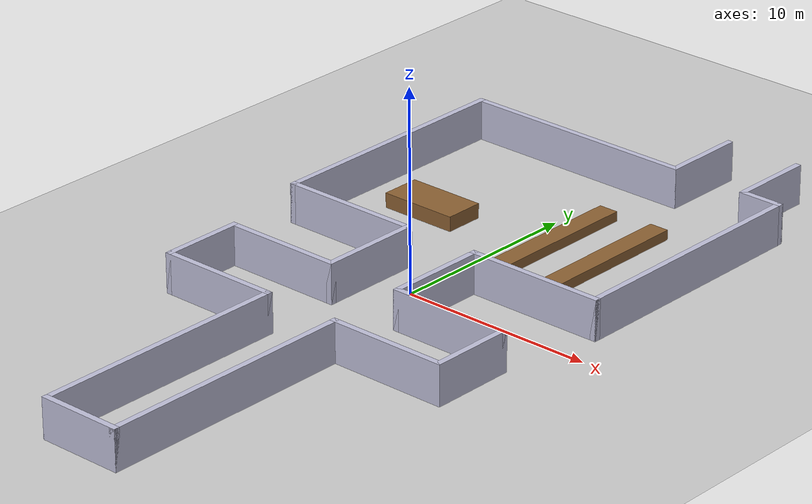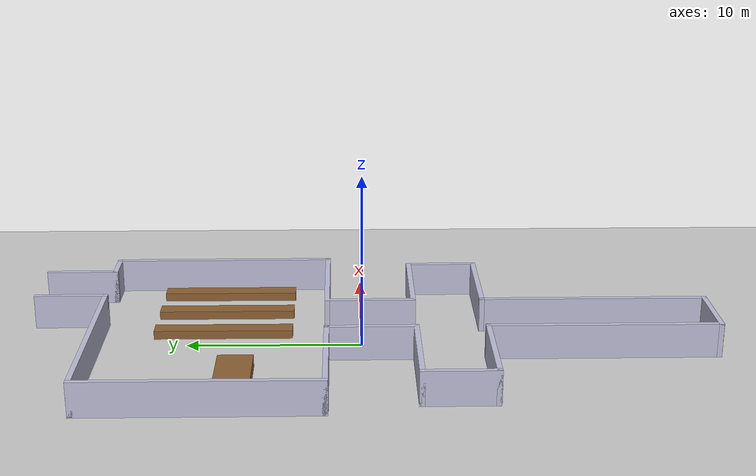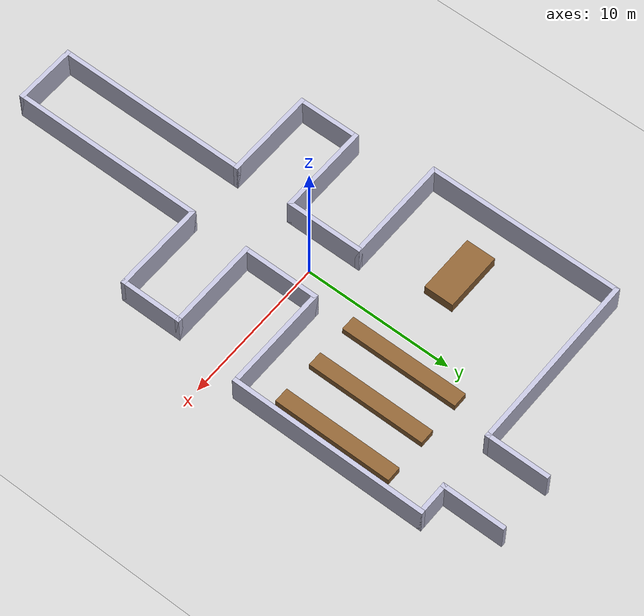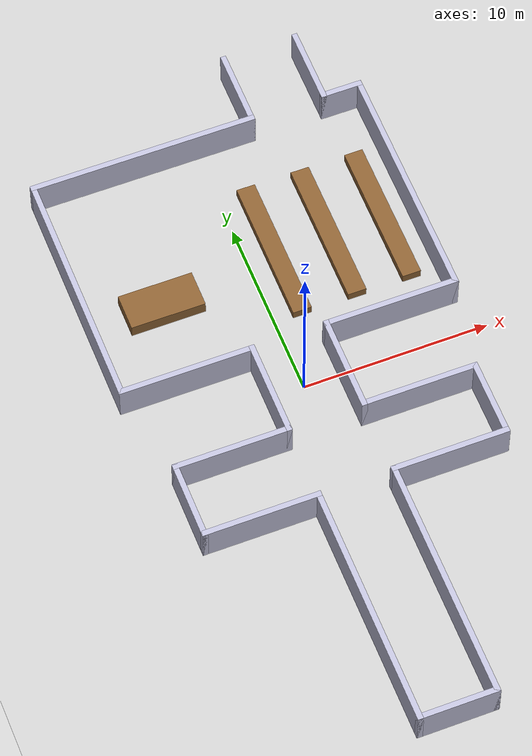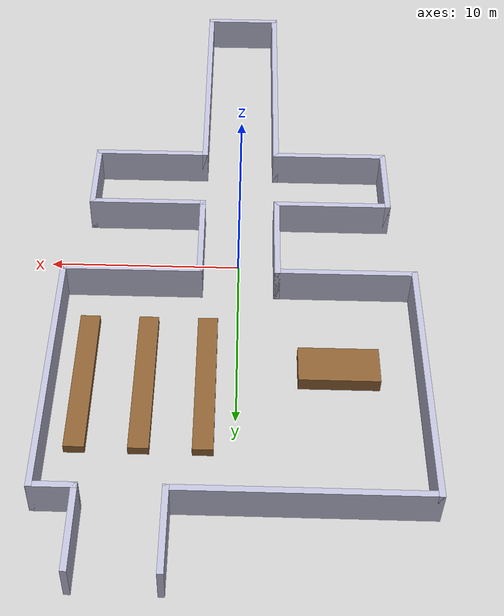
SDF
<sdf version="1.6">
 <world name="custom_world">
  <physics type="ode">
   <max_step_size>0.001</max_step_size>
   <real_time_factor>1</real_time_factor>
   <real_time_update_rate>1000</real_time_update_rate>
  </physics>
  <light name="sun" type="directional">
   <pose>0 0 10 0 0 0</pose>
   <diffuse>0.8 0.8 0.8 1</diffuse>
   <specular>0.2 0.2 0.2 1</specular>
   <attenuation>
    <range>1000</range>
    <constant>0.9</constant>
    <linear>0.01</linear>
    <quadratic>0.001</quadratic>
   </attenuation>
   <direction>-0.5 0.1 -0.9</direction>
  </light>
  <model name="ground_plane">
   <static>true</static>
   <link name="link">
    <collision name="col">
     <geometry><plane><normal>0 0 1</normal><size>100 100</size></plane></geometry>
    </collision>
    <visual name="vis">
     <geometry><plane><normal>0 0 1</normal><size>100 100</size></plane></geometry>
     <material><ambient>0.8 0.8 0.8 1</ambient><diffuse>0.8 0.8 0.8 1</diffuse></material>
    </visual>
   </link>
  </model>
  <model name="wall_1">
   <static>true</static>
   <pose>0.00 -20.00 1 0 0 0</pose>
   <link name="link">
    <collision name="col"><geometry><box><size>4.30 0.30 2.0</size></box></geometry></collision>
    <visual name="vis">
     <geometry><box><size>4.30 0.30 2.0</size></box></geometry>
     <material><ambient>0.75 0.75 0.85 1</ambient><diffuse>0.75 0.75 0.85 1</diffuse></material>
    </visual>
   </link>
  </model>
  <model name="wall_2">
   <static>true</static>
   <pose>-2.00 -13.50 1 0 0 0</pose>
   <link name="link">
    <collision name="col"><geometry><box><size>0.30 13.30 2.0</size></box></geometry></collision>
    <visual name="vis">
     <geometry><box><size>0.30 13.30 2.0</size></box></geometry>
     <material><ambient>0.75 0.75 0.85 1</ambient><diffuse>0.75 0.75 0.85 1</diffuse></material>
    </visual>
   </link>
  </model>
  <model name="wall_3">
   <static>true</static>
   <pose>2.00 -13.50 1 0 0 0</pose>
   <link name="link">
    <collision name="col"><geometry><box><size>0.30 13.30 2.0</size></box></geometry></collision>
    <visual name="vis">
     <geometry><box><size>0.30 13.30 2.0</size></box></geometry>
     <material><ambient>0.75 0.75 0.85 1</ambient><diffuse>0.75 0.75 0.85 1</diffuse></material>
    </visual>
   </link>
  </model>
  <model name="wall_4">
   <static>true</static>
   <pose>-5.00 -7.00 1 0 0 0</pose>
   <link name="link">
    <collision name="col"><geometry><box><size>6.30 0.30 2.0</size></box></geometry></collision>
    <visual name="vis">
     <geometry><box><size>6.30 0.30 2.0</size></box></geometry>
     <material><ambient>0.75 0.75 0.85 1</ambient><diffuse>0.75 0.75 0.85 1</diffuse></material>
    </visual>
   </link>
  </model>
  <model name="wall_5">
   <static>true</static>
   <pose>5.00 -7.00 1 0 0 0</pose>
   <link name="link">
    <collision name="col"><geometry><box><size>6.30 0.30 2.0</size></box></geometry></collision>
    <visual name="vis">
     <geometry><box><size>6.30 0.30 2.0</size></box></geometry>
     <material><ambient>0.75 0.75 0.85 1</ambient><diffuse>0.75 0.75 0.85 1</diffuse></material>
    </visual>
   </link>
  </model>
  <model name="wall_6">
   <static>true</static>
   <pose>-8.00 -5.00 1 0 0 0</pose>
   <link name="link">
    <collision name="col"><geometry><box><size>0.30 4.30 2.0</size></box></geometry></collision>
    <visual name="vis">
     <geometry><box><size>0.30 4.30 2.0</size></box></geometry>
     <material><ambient>0.75 0.75 0.85 1</ambient><diffuse>0.75 0.75 0.85 1</diffuse></material>
    </visual>
   </link>
  </model>
  <model name="wall_7">
   <static>true</static>
   <pose>8.00 -5.00 1 0 0 0</pose>
   <link name="link">
    <collision name="col"><geometry><box><size>0.30 4.30 2.0</size></box></geometry></collision>
    <visual name="vis">
     <geometry><box><size>0.30 4.30 2.0</size></box></geometry>
     <material><ambient>0.75 0.75 0.85 1</ambient><diffuse>0.75 0.75 0.85 1</diffuse></material>
    </visual>
   </link>
  </model>
  <model name="wall_8">
   <static>true</static>
   <pose>-5.00 -3.00 1 0 0 0</pose>
   <link name="link">
    <collision name="col"><geometry><box><size>6.30 0.30 2.0</size></box></geometry></collision>
    <visual name="vis">
     <geometry><box><size>6.30 0.30 2.0</size></box></geometry>
     <material><ambient>0.75 0.75 0.85 1</ambient><diffuse>0.75 0.75 0.85 1</diffuse></material>
    </visual>
   </link>
  </model>
  <model name="wall_9">
   <static>true</static>
   <pose>5.00 -3.00 1 0 0 0</pose>
   <link name="link">
    <collision name="col"><geometry><box><size>6.30 0.30 2.0</size></box></geometry></collision>
    <visual name="vis">
     <geometry><box><size>6.30 0.30 2.0</size></box></geometry>
     <material><ambient>0.75 0.75 0.85 1</ambient><diffuse>0.75 0.75 0.85 1</diffuse></material>
    </visual>
   </link>
  </model>
  <model name="wall_10">
   <static>true</static>
   <pose>-2.00 -0.50 1 0 0 0</pose>
   <link name="link">
    <collision name="col"><geometry><box><size>0.30 5.30 2.0</size></box></geometry></collision>
    <visual name="vis">
     <geometry><box><size>0.30 5.30 2.0</size></box></geometry>
     <material><ambient>0.75 0.75 0.85 1</ambient><diffuse>0.75 0.75 0.85 1</diffuse></material>
    </visual>
   </link>
  </model>
  <model name="wall_11">
   <static>true</static>
   <pose>2.00 -0.50 1 0 0 0</pose>
   <link name="link">
    <collision name="col"><geometry><box><size>0.30 5.30 2.0</size></box></geometry></collision>
    <visual name="vis">
     <geometry><box><size>0.30 5.30 2.0</size></box></geometry>
     <material><ambient>0.75 0.75 0.85 1</ambient><diffuse>0.75 0.75 0.85 1</diffuse></material>
    </visual>
   </link>
  </model>
  <model name="wall_12">
   <static>true</static>
   <pose>-5.50 2.00 1 0 0 0</pose>
   <link name="link">
    <collision name="col"><geometry><box><size>7.30 0.30 2.0</size></box></geometry></collision>
    <visual name="vis">
     <geometry><box><size>7.30 0.30 2.0</size></box></geometry>
     <material><ambient>0.75 0.75 0.85 1</ambient><diffuse>0.75 0.75 0.85 1</diffuse></material>
    </visual>
   </link>
  </model>
  <model name="wall_13">
   <static>true</static>
   <pose>5.50 2.00 1 0 0 0</pose>
   <link name="link">
    <collision name="col"><geometry><box><size>7.30 0.30 2.0</size></box></geometry></collision>
    <visual name="vis">
     <geometry><box><size>7.30 0.30 2.0</size></box></geometry>
     <material><ambient>0.75 0.75 0.85 1</ambient><diffuse>0.75 0.75 0.85 1</diffuse></material>
    </visual>
   </link>
  </model>
  <model name="wall_14">
   <static>true</static>
   <pose>-9.00 8.50 1 0 0 0</pose>
   <link name="link">
    <collision name="col"><geometry><box><size>0.30 13.30 2.0</size></box></geometry></collision>
    <visual name="vis">
     <geometry><box><size>0.30 13.30 2.0</size></box></geometry>
     <material><ambient>0.75 0.75 0.85 1</ambient><diffuse>0.75 0.75 0.85 1</diffuse></material>
    </visual>
   </link>
  </model>
  <model name="wall_15">
   <static>true</static>
   <pose>9.00 8.50 1 0 0 0</pose>
   <link name="link">
    <collision name="col"><geometry><box><size>0.30 13.30 2.0</size></box></geometry></collision>
    <visual name="vis">
     <geometry><box><size>0.30 13.30 2.0</size></box></geometry>
     <material><ambient>0.75 0.75 0.85 1</ambient><diffuse>0.75 0.75 0.85 1</diffuse></material>
    </visual>
   </link>
  </model>
  <model name="wall_16">
   <static>true</static>
   <pose>-3.00 15.00 1 0 0 0</pose>
   <link name="link">
    <collision name="col"><geometry><box><size>12.30 0.30 2.0</size></box></geometry></collision>
    <visual name="vis">
     <geometry><box><size>12.30 0.30 2.0</size></box></geometry>
     <material><ambient>0.75 0.75 0.85 1</ambient><diffuse>0.75 0.75 0.85 1</diffuse></material>
    </visual>
   </link>
  </model>
  <model name="wall_17">
   <static>true</static>
   <pose>8.00 15.00 1 0 0 0</pose>
   <link name="link">
    <collision name="col"><geometry><box><size>2.30 0.30 2.0</size></box></geometry></collision>
    <visual name="vis">
     <geometry><box><size>2.30 0.30 2.0</size></box></geometry>
     <material><ambient>0.75 0.75 0.85 1</ambient><diffuse>0.75 0.75 0.85 1</diffuse></material>
    </visual>
   </link>
  </model>
  <model name="wall_18">
   <static>true</static>
   <pose>3.00 17.00 1 0 0 0</pose>
   <link name="link">
    <collision name="col"><geometry><box><size>0.30 4.30 2.0</size></box></geometry></collision>
    <visual name="vis">
     <geometry><box><size>0.30 4.30 2.0</size></box></geometry>
     <material><ambient>0.75 0.75 0.85 1</ambient><diffuse>0.75 0.75 0.85 1</diffuse></material>
    </visual>
   </link>
  </model>
  <model name="wall_19">
   <static>true</static>
   <pose>7.00 17.00 1 0 0 0</pose>
   <link name="link">
    <collision name="col"><geometry><box><size>0.30 4.30 2.0</size></box></geometry></collision>
    <visual name="vis">
     <geometry><box><size>0.30 4.30 2.0</size></box></geometry>
     <material><ambient>0.75 0.75 0.85 1</ambient><diffuse>0.75 0.75 0.85 1</diffuse></material>
    </visual>
   </link>
  </model>
  <model name="desk">
   <static>true</static>
   <pose>-5.00 7.00 0.375 0 0 0</pose>
   <link name="link">
    <collision name="col"><geometry><box><size>4.0 2.0 0.75</size></box></geometry></collision>
    <visual name="vis">
     <geometry><box><size>4.0 2.0 0.75</size></box></geometry>
     <material><ambient>0.55 0.38 0.2 1</ambient><diffuse>0.55 0.38 0.2 1</diffuse></material>
    </visual>
   </link>
  </model>
  <model name="bench_1">
   <static>true</static>
   <pose>1.50 8.00 0.25 0 0 0</pose>
   <link name="link">
    <collision name="col"><geometry><box><size>1.0 8.0 0.5</size></box></geometry></collision>
    <visual name="vis">
     <geometry><box><size>1.0 8.0 0.5</size></box></geometry>
     <material><ambient>0.55 0.38 0.2 1</ambient><diffuse>0.55 0.38 0.2 1</diffuse></material>
    </visual>
   </link>
  </model>
  <model name="bench_2">
   <static>true</static>
   <pose>4.50 8.00 0.25 0 0 0</pose>
   <link name="link">
    <collision name="col"><geometry><box><size>1.0 8.0 0.5</size></box></geometry></collision>
    <visual name="vis">
     <geometry><box><size>1.0 8.0 0.5</size></box></geometry>
     <material><ambient>0.55 0.38 0.2 1</ambient><diffuse>0.55 0.38 0.2 1</diffuse></material>
    </visual>
   </link>
  </model>
  <model name="bench_3">
   <static>true</static>
   <pose>7.50 8.00 0.25 0 0 0</pose>
   <link name="link">
    <collision name="col"><geometry><box><size>1.0 8.0 0.5</size></box></geometry></collision>
    <visual name="vis">
     <geometry><box><size>1.0 8.0 0.5</size></box></geometry>
     <material><ambient>0.55 0.38 0.2 1</ambient><diffuse>0.55 0.38 0.2 1</diffuse></material>
    </visual>
   </link>
  </model>
 </world>
</sdf>
